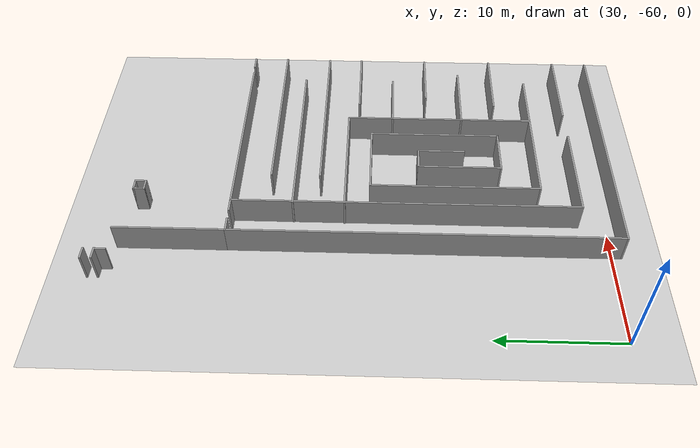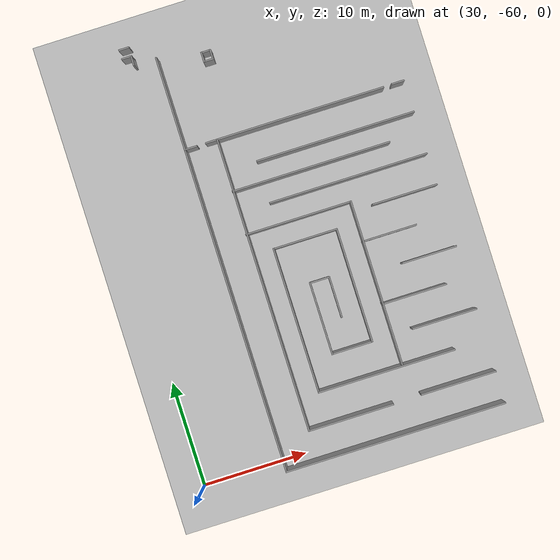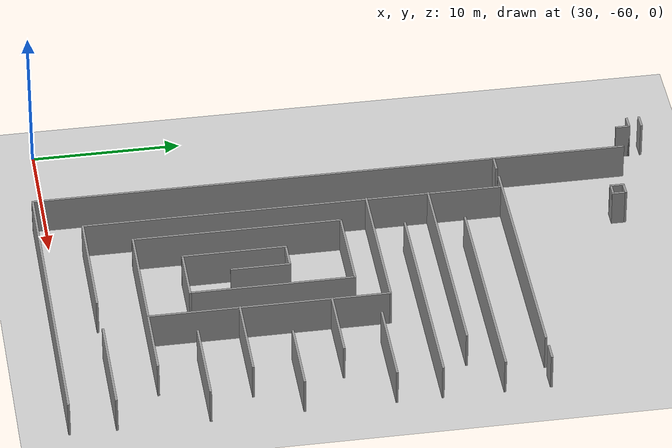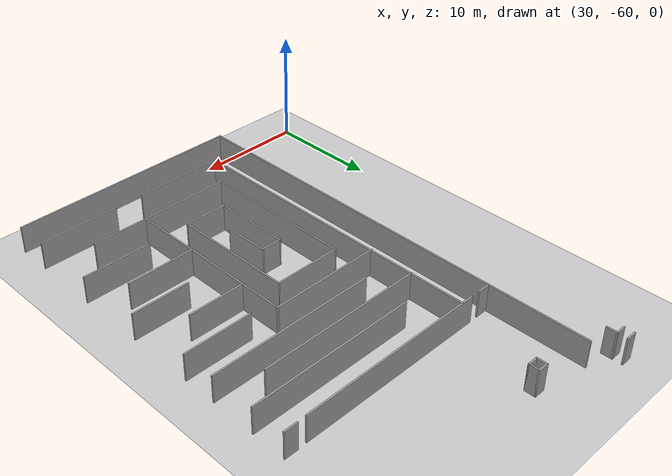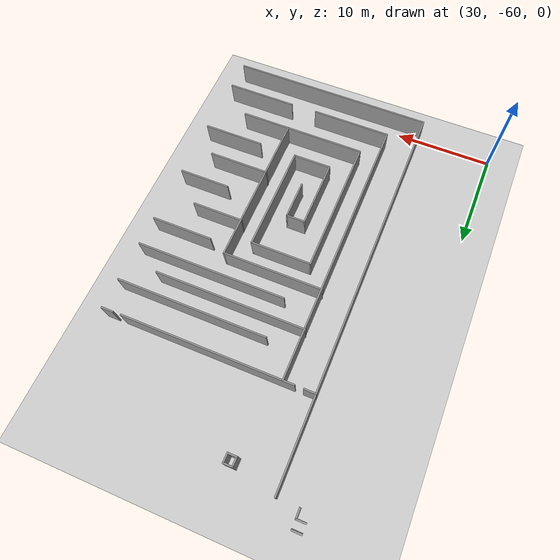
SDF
<sdf version="1.6">
 <world name="default">
  <model name="ground_plane">
   <static>1</static>
   <link name="link">
    <collision name="collision">
     <geometry><plane><normal>0 0 1</normal><size>300 300</size></plane></geometry>
     <surface>
      <contact><collide_bitmask>65535</collide_bitmask></contact>
      <friction><ode><mu>100</mu><mu2>50</mu2></ode></friction>
     </surface>
    </collision>
    <visual name="visual">
     <cast_shadows>0</cast_shadows>
     <geometry><plane><normal>0 0 1</normal><size>300 300</size></plane></geometry>
     <material>
      <script><uri>file://media/materials/scripts/gazebo.material</uri><name>Gazebo/Grey</name></script>
     </material>
    </visual>
   </link>
  </model>
  <model name="NIK">
   <pose>-0.005548 -3.7937 0 0 -0 0</pose>
   <link name="Wall_126">
    <collision name="Wall_126_Collision">
     <geometry><box><size>9 0.15 2.5</size></box></geometry>
     <pose>0 0 1.25 0 -0 0</pose>
    </collision>
    <visual name="Wall_126_Visual">
     <pose>0 0 1.25 0 -0 0</pose>
     <geometry><box><size>9 0.15 2.5</size></box></geometry>
     <material>
      <script><uri>file://media/materials/scripts/gazebo.material</uri><name>Gazebo/Grey</name></script>
      <ambient>1 1 1 1</ambient>
     </material>
     <meta><layer>0</layer></meta>
    </visual>
    <pose>37.8813 -21.4538 0 0 -0 -1.5708</pose>
   </link>
   <link name="Wall_152">
    <collision name="Wall_152_Collision">
     <geometry><box><size>28.25 0.15 2.5</size></box></geometry>
     <pose>0 0 1.25 0 -0 0</pose>
    </collision>
    <visual name="Wall_152_Visual">
     <pose>0 0 1.25 0 -0 0</pose>
     <geometry><box><size>28.25 0.15 2.5</size></box></geometry>
     <material>
      <script><uri>file://media/materials/scripts/gazebo.material</uri><name>Gazebo/Grey</name></script>
      <ambient>1 1 1 1</ambient>
     </material>
     <meta><layer>0</layer></meta>
    </visual>
    <pose>40.9954 -39.9466 0 0 -0 -1.5708</pose>
   </link>
   <link name="Wall_153">
    <collision name="Wall_153_Collision">
     <geometry><box><size>8.25 0.15 2.5</size></box></geometry>
     <pose>0 0 1.25 0 -0 0</pose>
    </collision>
    <visual name="Wall_153_Visual">
     <pose>0 0 1.25 0 -0 0</pose>
     <geometry><box><size>8.25 0.15 2.5</size></box></geometry>
     <material>
      <script><uri>file://media/materials/scripts/gazebo.material</uri><name>Gazebo/Grey</name></script>
      <ambient>1 1 1 1</ambient>
     </material>
     <meta><layer>0</layer></meta>
    </visual>
    <pose>45.0454 -53.9966 0 0 -0 0</pose>
   </link>
   <link name="Wall_155">
    <collision name="Wall_155_Collision">
     <geometry><box><size>7.25 0.15 2.5</size></box></geometry>
     <pose>0 0 1.25 0 -0 0</pose>
    </collision>
    <visual name="Wall_155_Visual">
     <pose>0 0 1.25 0 -0 0</pose>
     <geometry><box><size>7.25 0.15 2.5</size></box></geometry>
     <material>
      <script><uri>file://media/materials/scripts/gazebo.material</uri><name>Gazebo/Grey</name></script>
      <ambient>1 1 1 1</ambient>
     </material>
     <meta><layer>0</layer></meta>
    </visual>
    <pose>55.4543 -53.929 0 0 -0 3.14159</pose>
   </link>
   <link name="Wall_157">
    <collision name="Wall_157_Collision">
     <geometry><box><size>13.25 0.15 2.5</size></box></geometry>
     <pose>0 0 1.25 0 -0 0</pose>
    </collision>
    <visual name="Wall_157_Visual">
     <pose>0 0 1.25 0 -0 0</pose>
     <geometry><box><size>13.25 0.15 2.5</size></box></geometry>
     <material>
      <script><uri>file://media/materials/scripts/gazebo.material</uri><name>Gazebo/Grey</name></script>
      <ambient>1 1 1 1</ambient>
     </material>
     <meta><layer>0</layer></meta>
    </visual>
    <pose>49.4686 -50.8959 0 0 -0 3.14159</pose>
   </link>
   <link name="Wall_158">
    <collision name="Wall_158_Collision">
     <geometry><box><size>14 0.15 2.5</size></box></geometry>
     <pose>0 0 1.25 0 -0 0</pose>
    </collision>
    <visual name="Wall_158_Visual">
     <pose>0 0 1.25 0 -0 0</pose>
     <geometry><box><size>14 0.15 2.5</size></box></geometry>
     <material>
      <script><uri>file://media/materials/scripts/gazebo.material</uri><name>Gazebo/Grey</name></script>
      <ambient>1 1 1 1</ambient>
     </material>
     <meta><layer>0</layer></meta>
    </visual>
    <pose>42.9186 -43.9709 0 0 -0 1.5708</pose>
   </link>
   <link name="Wall_159">
    <collision name="Wall_159_Collision">
     <geometry><box><size>6.25 0.15 2.5</size></box></geometry>
     <pose>0 0 1.25 0 -0 0</pose>
    </collision>
    <visual name="Wall_159_Visual">
     <pose>0 0 1.25 0 -0 0</pose>
     <geometry><box><size>6.25 0.15 2.5</size></box></geometry>
     <material>
      <script><uri>file://media/materials/scripts/gazebo.material</uri><name>Gazebo/Grey</name></script>
      <ambient>1 1 1 1</ambient>
     </material>
     <meta><layer>0</layer></meta>
    </visual>
    <pose>45.9686 -37.0459 0 0 -0 0</pose>
   </link>
   <link name="Wall_160">
    <collision name="Wall_160_Collision">
     <geometry><box><size>11 0.15 2.5</size></box></geometry>
     <pose>0 0 1.25 0 -0 0</pose>
    </collision>
    <visual name="Wall_160_Visual">
     <pose>0 0 1.25 0 -0 0</pose>
     <geometry><box><size>11 0.15 2.5</size></box></geometry>
     <material>
      <script><uri>file://media/materials/scripts/gazebo.material</uri><name>Gazebo/Grey</name></script>
      <ambient>1 1 1 1</ambient>
     </material>
     <meta><layer>0</layer></meta>
    </visual>
    <pose>49.0186 -42.4709 0 0 -0 -1.5708</pose>
   </link>
   <link name="Wall_161">
    <collision name="Wall_161_Collision">
     <geometry><box><size>4 0.15 2.5</size></box></geometry>
     <pose>0 0 1.25 0 -0 0</pose>
    </collision>
    <visual name="Wall_161_Visual">
     <pose>0 0 1.25 0 -0 0</pose>
     <geometry><box><size>4 0.15 2.5</size></box></geometry>
     <material>
      <script><uri>file://media/materials/scripts/gazebo.material</uri><name>Gazebo/Grey</name></script>
      <ambient>1 1 1 1</ambient>
     </material>
     <meta><layer>0</layer></meta>
    </visual>
    <pose>47.0936 -47.8959 0 0 -0 3.14159</pose>
   </link>
   <link name="Wall_162">
    <collision name="Wall_162_Collision">
     <geometry><box><size>7 0.15 2.5</size></box></geometry>
     <pose>0 0 1.25 0 -0 0</pose>
    </collision>
    <visual name="Wall_162_Visual">
     <pose>0 0 1.25 0 -0 0</pose>
     <geometry><box><size>7 0.15 2.5</size></box></geometry>
     <material>
      <script><uri>file://media/materials/scripts/gazebo.material</uri><name>Gazebo/Grey</name></script>
      <ambient>1 1 1 1</ambient>
     </material>
     <meta><layer>0</layer></meta>
    </visual>
    <pose>45.1686 -44.4709 0 0 -0 1.5708</pose>
   </link>
   <link name="Wall_163">
    <collision name="Wall_163_Collision">
     <geometry><box><size>2 0.15 2.5</size></box></geometry>
     <pose>0 0 1.25 0 -0 0</pose>
    </collision>
    <visual name="Wall_163_Visual">
     <pose>0 0 1.25 0 -0 0</pose>
     <geometry><box><size>2 0.15 2.5</size></box></geometry>
     <material>
      <script><uri>file://media/materials/scripts/gazebo.material</uri><name>Gazebo/Grey</name></script>
      <ambient>1 1 1 1</ambient>
     </material>
     <meta><layer>0</layer></meta>
    </visual>
    <pose>46.0936 -41.0459 0 0 -0 0</pose>
   </link>
   <link name="Wall_164">
    <collision name="Wall_164_Collision">
     <geometry><box><size>4 0.15 2.5</size></box></geometry>
     <pose>0 0 1.25 0 -0 0</pose>
    </collision>
    <visual name="Wall_164_Visual">
     <pose>0 0 1.25 0 -0 0</pose>
     <geometry><box><size>4 0.15 2.5</size></box></geometry>
     <material>
      <script><uri>file://media/materials/scripts/gazebo.material</uri><name>Gazebo/Grey</name></script>
      <ambient>1 1 1 1</ambient>
     </material>
     <meta><layer>0</layer></meta>
    </visual>
    <pose>47.0186 -42.9709 0 0 -0 -1.5708</pose>
   </link>
   <link name="Wall_166">
    <collision name="Wall_166_Collision">
     <geometry><box><size>16 0.15 2.5</size></box></geometry>
     <pose>0 0 1.25 0 -0 0</pose>
    </collision>
    <visual name="Wall_166_Visual">
     <pose>0 0 1.25 0 -0 0</pose>
     <geometry><box><size>16 0.15 2.5</size></box></geometry>
     <material>
      <script><uri>file://media/materials/scripts/gazebo.material</uri><name>Gazebo/Grey</name></script>
      <ambient>1 1 1 1</ambient>
     </material>
     <meta><layer>0</layer></meta>
    </visual>
    <pose>51.0188 -42.9472 0 0 -0 1.5708</pose>
   </link>
   <link name="Wall_167">
    <collision name="Wall_167_Collision">
     <geometry><box><size>10.25 0.15 2.5</size></box></geometry>
     <pose>0 0 1.25 0 -0 0</pose>
    </collision>
    <visual name="Wall_167_Visual">
     <pose>0 0 1.25 0 -0 0</pose>
     <geometry><box><size>10.25 0.15 2.5</size></box></geometry>
     <material>
      <script><uri>file://media/materials/scripts/gazebo.material</uri><name>Gazebo/Grey</name></script>
      <ambient>1 1 1 1</ambient>
     </material>
     <meta><layer>0</layer></meta>
    </visual>
    <pose>45.9688 -35.0222 0 0 -0 3.14159</pose>
   </link>
   <link name="Wall_169">
    <collision name="Wall_169_Collision">
     <geometry><box><size>6.25 0.15 2.5</size></box></geometry>
     <pose>0 0 1.25 0 -0 0</pose>
    </collision>
    <visual name="Wall_169_Visual">
     <pose>0 0 1.25 0 -0 0</pose>
     <geometry><box><size>6.25 0.15 2.5</size></box></geometry>
     <material>
      <script><uri>file://media/materials/scripts/gazebo.material</uri><name>Gazebo/Grey</name></script>
      <ambient>1 1 1 1</ambient>
     </material>
     <meta><layer>0</layer></meta>
    </visual>
    <pose>56.0119 -47.9102 0 0 -0 0</pose>
   </link>
   <link name="Wall_171">
    <collision name="Wall_171_Collision">
     <geometry><box><size>6.25 0.15 2.5</size></box></geometry>
     <pose>0 0 1.25 0 -0 0</pose>
    </collision>
    <visual name="Wall_171_Visual">
     <pose>0 0 1.25 0 -0 0</pose>
     <geometry><box><size>6.25 0.15 2.5</size></box></geometry>
     <material>
      <script><uri>file://media/materials/scripts/gazebo.material</uri><name>Gazebo/Grey</name></script>
      <ambient>1 1 1 1</ambient>
     </material>
     <meta><layer>0</layer></meta>
    </visual>
    <pose>54.035 -44.9008 0 0 -0 3.14159</pose>
   </link>
   <link name="Wall_173">
    <collision name="Wall_173_Collision">
     <geometry><box><size>5.25 0.15 2.5</size></box></geometry>
     <pose>0 0 1.25 0 -0 0</pose>
    </collision>
    <visual name="Wall_173_Visual">
     <pose>0 0 1.25 0 -0 0</pose>
     <geometry><box><size>5.25 0.15 2.5</size></box></geometry>
     <material>
      <script><uri>file://media/materials/scripts/gazebo.material</uri><name>Gazebo/Grey</name></script>
      <ambient>1 1 1 1</ambient>
     </material>
     <meta><layer>0</layer></meta>
    </visual>
    <pose>56.4497 -41.8577 0 0 -0 3.14159</pose>
   </link>
   <link name="Wall_175">
    <collision name="Wall_175_Collision">
     <geometry><box><size>5.25 0.15 2.5</size></box></geometry>
     <pose>0 0 1.25 0 -0 0</pose>
    </collision>
    <visual name="Wall_175_Visual">
     <pose>0 0 1.25 0 -0 0</pose>
     <geometry><box><size>5.25 0.15 2.5</size></box></geometry>
     <material>
      <script><uri>file://media/materials/scripts/gazebo.material</uri><name>Gazebo/Grey</name></script>
      <ambient>1 1 1 1</ambient>
     </material>
     <meta><layer>0</layer></meta>
    </visual>
    <pose>53.5405 -38.8655 0 0 -0 0</pose>
   </link>
   <link name="Wall_177">
    <collision name="Wall_177_Collision">
     <geometry><box><size>6.25 0.15 2.5</size></box></geometry>
     <pose>0 0 1.25 0 -0 0</pose>
    </collision>
    <visual name="Wall_177_Visual">
     <pose>0 0 1.25 0 -0 0</pose>
     <geometry><box><size>6.25 0.15 2.5</size></box></geometry>
     <material>
      <script><uri>file://media/materials/scripts/gazebo.material</uri><name>Gazebo/Grey</name></script>
      <ambient>1 1 1 1</ambient>
     </material>
     <meta><layer>0</layer></meta>
    </visual>
    <pose>55.9676 -35.8912 0 0 -0 3.14159</pose>
   </link>
   <link name="Wall_179">
    <collision name="Wall_179_Collision">
     <geometry><box><size>15.25 0.15 2.5</size></box></geometry>
     <pose>0 0 1.25 0 -0 0</pose>
    </collision>
    <visual name="Wall_179_Visual">
     <pose>0 0 1.25 0 -0 0</pose>
     <geometry><box><size>15.25 0.15 2.5</size></box></geometry>
     <material>
      <script><uri>file://media/materials/scripts/gazebo.material</uri><name>Gazebo/Grey</name></script>
      <ambient>1 1 1 1</ambient>
     </material>
     <meta><layer>0</layer></meta>
    </visual>
    <pose>51.4497 -32.8989 0 0 -0 3.14159</pose>
   </link>
   <link name="Wall_181">
    <collision name="Wall_181_Collision">
     <geometry><box><size>15.25 0.15 2.5</size></box></geometry>
     <pose>0 0 1.25 0 -0 0</pose>
    </collision>
    <visual name="Wall_181_Visual">
     <pose>0 0 1.25 0 -0 0</pose>
     <geometry><box><size>15.25 0.15 2.5</size></box></geometry>
     <material>
      <script><uri>file://media/materials/scripts/gazebo.material</uri><name>Gazebo/Grey</name></script>
      <ambient>1 1 1 1</ambient>
     </material>
     <meta><layer>0</layer></meta>
    </visual>
    <pose>48.4887 -30.8563 0 0 -0 0</pose>
   </link>
   <link name="Wall_183">
    <collision name="Wall_183_Collision">
     <geometry><box><size>15.25 0.15 2.5</size></box></geometry>
     <pose>0 0 1.25 0 -0 0</pose>
    </collision>
    <visual name="Wall_183_Visual">
     <pose>0 0 1.25 0 -0 0</pose>
     <geometry><box><size>15.25 0.15 2.5</size></box></geometry>
     <material>
      <script><uri>file://media/materials/scripts/gazebo.material</uri><name>Gazebo/Grey</name></script>
      <ambient>1 1 1 1</ambient>
     </material>
     <meta><layer>0</layer></meta>
    </visual>
    <pose>51.4676 -28.8675 0 0 -0 3.14159</pose>
   </link>
   <link name="Wall_19">
    <collision name="Wall_19_Collision">
     <geometry><box><size>21.25 0.15 2.5</size></box></geometry>
     <pose>0 0 1.25 0 -0 0</pose>
    </collision>
    <visual name="Wall_19_Visual">
     <pose>0 0 1.25 0 -0 0</pose>
     <geometry><box><size>21.25 0.15 2.5</size></box></geometry>
     <material>
      <script><uri>file://media/materials/scripts/gazebo.material</uri><name>Gazebo/Grey</name></script>
      <ambient>1 1 1 1</ambient>
     </material>
     <meta><layer>0</layer></meta>
    </visual>
    <pose>48.4313 -56.9788 0 0 -0 3.14159</pose>
   </link>
   <link name="Wall_20">
    <collision name="Wall_20_Collision">
     <geometry><box><size>31.25 0.15 2.5</size></box></geometry>
     <pose>0 0 1.25 0 -0 0</pose>
    </collision>
    <visual name="Wall_20_Visual">
     <pose>0 0 1.25 0 -0 0</pose>
     <geometry><box><size>31.25 0.15 2.5</size></box></geometry>
     <material>
      <script><uri>file://media/materials/scripts/gazebo.material</uri><name>Gazebo/Grey</name></script>
      <ambient>1 1 1 1</ambient>
     </material>
     <meta><layer>0</layer></meta>
    </visual>
    <pose>37.8813 -41.4288 0 0 -0 1.5708</pose>
   </link>
   <link name="Wall_309">
    <collision name="Wall_309_Collision">
     <geometry><box><size>1 0.15 2.5</size></box></geometry>
     <pose>0 0 1.25 0 -0 0</pose>
    </collision>
    <visual name="Wall_309_Visual">
     <pose>0 0 1.25 0 -0 0</pose>
     <geometry><box><size>1 0.15 2.5</size></box></geometry>
     <material>
      <script><uri>file://media/materials/scripts/gazebo.material</uri><name>Gazebo/Grey</name></script>
      <ambient>1 1 1 1</ambient>
     </material>
     <meta><layer>0</layer></meta>
    </visual>
    <pose>35.7405 -16.6025 0 0 -0 1.5708</pose>
   </link>
   <link name="Wall_333">
    <collision name="Wall_333_Collision">
     <geometry><box><size>1 0.15 2.5</size></box></geometry>
     <pose>0 0 1.25 0 -0 0</pose>
    </collision>
    <visual name="Wall_333_Visual">
     <pose>0 0 1.25 0 -0 0</pose>
     <geometry><box><size>1 0.15 2.5</size></box></geometry>
     <material>
      <script><uri>file://media/materials/scripts/gazebo.material</uri><name>Gazebo/Grey</name></script>
      <ambient>1 1 1 1</ambient>
     </material>
     <meta><layer>0</layer></meta>
    </visual>
    <pose>35.3155 -15.3275 0 0 -0 0</pose>
   </link>
   <link name="Wall_335">
    <collision name="Wall_335_Collision">
     <geometry><box><size>1 0.15 2.5</size></box></geometry>
     <pose>0 0 1.25 0 -0 0</pose>
    </collision>
    <visual name="Wall_335_Visual">
     <pose>0 0 1.25 0 -0 0</pose>
     <geometry><box><size>1 0.15 2.5</size></box></geometry>
     <material>
      <script><uri>file://media/materials/scripts/gazebo.material</uri><name>Gazebo/Grey</name></script>
      <ambient>1 1 1 1</ambient>
     </material>
     <meta><layer>0</layer></meta>
    </visual>
    <pose>35.3155 -16.1775 0 0 -0 3.14159</pose>
   </link>
   <link name="Wall_525">
    <collision name="Wall_525_Collision">
     <geometry><box><size>1 0.15 2.5</size></box></geometry>
     <pose>0 0 1.25 0 -0 0</pose>
    </collision>
    <visual name="Wall_525_Visual">
     <pose>0 0 1.25 0 -0 0</pose>
     <geometry><box><size>1 0.15 2.5</size></box></geometry>
     <material>
      <script><uri>file://media/materials/scripts/gazebo.material</uri><name>Gazebo/Grey</name></script>
      <ambient>1 1 1 1</ambient>
     </material>
     <meta><layer>0</layer></meta>
    </visual>
    <pose>42.0131 -18.2414 0 0 -0 -1.5708</pose>
   </link>
   <link name="Wall_526">
    <collision name="Wall_526_Collision">
     <geometry><box><size>1 0.15 2.5</size></box></geometry>
     <pose>0 0 1.25 0 -0 0</pose>
    </collision>
    <visual name="Wall_526_Visual">
     <pose>0 0 1.25 0 -0 0</pose>
     <geometry><box><size>1 0.15 2.5</size></box></geometry>
     <material>
      <script><uri>file://media/materials/scripts/gazebo.material</uri><name>Gazebo/Grey</name></script>
      <ambient>1 1 1 1</ambient>
     </material>
     <meta><layer>0</layer></meta>
    </visual>
    <pose>42.4381 -18.6664 0 0 -0 0</pose>
   </link>
   <link name="Wall_527">
    <collision name="Wall_527_Collision">
     <geometry><box><size>1 0.15 2.5</size></box></geometry>
     <pose>0 0 1.25 0 -0 0</pose>
    </collision>
    <visual name="Wall_527_Visual">
     <pose>0 0 1.25 0 -0 0</pose>
     <geometry><box><size>1 0.15 2.5</size></box></geometry>
     <material>
      <script><uri>file://media/materials/scripts/gazebo.material</uri><name>Gazebo/Grey</name></script>
      <ambient>1 1 1 1</ambient>
     </material>
     <meta><layer>0</layer></meta>
    </visual>
    <pose>42.8631 -18.2414 0 0 -0 1.5708</pose>
   </link>
   <link name="Wall_528">
    <collision name="Wall_528_Collision">
     <geometry><box><size>1 0.15 2.5</size></box></geometry>
     <pose>0 0 1.25 0 -0 0</pose>
    </collision>
    <visual name="Wall_528_Visual">
     <pose>0 0 1.25 0 -0 0</pose>
     <geometry><box><size>1 0.15 2.5</size></box></geometry>
     <material>
      <script><uri>file://media/materials/scripts/gazebo.material</uri><name>Gazebo/Grey</name></script>
      <ambient>1 1 1 1</ambient>
     </material>
     <meta><layer>0</layer></meta>
    </visual>
    <pose>42.4381 -17.8164 0 0 -0 3.14159</pose>
   </link>
   <link name="Wall_535">
    <collision name="Wall_535_Collision">
     <geometry><box><size>1.25 0.15 2.5</size></box></geometry>
     <pose>0 0 1.25 0 -0 0</pose>
    </collision>
    <visual name="Wall_535_Visual">
     <pose>0 0 1.25 0 -0 0</pose>
     <geometry><box><size>1.25 0.15 2.5</size></box></geometry>
     <material>
      <script><uri>file://media/materials/scripts/gazebo.material</uri><name>Gazebo/Grey</name></script>
      <ambient>1 1 1 1</ambient>
     </material>
     <meta><layer>0</layer></meta>
    </visual>
    <pose>38.4313 -25.8788 0 0 -0 0</pose>
   </link>
   <link name="Wall_537">
    <collision name="Wall_537_Collision">
     <geometry><box><size>17.25 0.15 2.5</size></box></geometry>
     <pose>0 0 1.25 0 -0 0</pose>
    </collision>
    <visual name="Wall_537_Visual">
     <pose>0 0 1.25 0 -0 0</pose>
     <geometry><box><size>17.25 0.15 2.5</size></box></geometry>
     <material>
      <script><uri>file://media/materials/scripts/gazebo.material</uri><name>Gazebo/Grey</name></script>
      <ambient>1 1 1 1</ambient>
     </material>
     <meta><layer>0</layer></meta>
    </visual>
    <pose>48.4662 -25.8753 0 0 -0 0</pose>
   </link>
   <link name="Wall_539">
    <collision name="Wall_539_Collision">
     <geometry><box><size>1.25 0.15 2.5</size></box></geometry>
     <pose>0 0 1.25 0 -0 0</pose>
    </collision>
    <visual name="Wall_539_Visual">
     <pose>0 0 1.25 0 -0 0</pose>
     <geometry><box><size>1.25 0.15 2.5</size></box></geometry>
     <material>
      <script><uri>file://media/materials/scripts/gazebo.material</uri><name>Gazebo/Grey</name></script>
      <ambient>1 1 1 1</ambient>
     </material>
     <meta><layer>0</layer></meta>
    </visual>
    <pose>58.4537 -25.8459 0 0 -0 3.14159</pose>
   </link>
   <static>1</static>
  </model>
 </world>
</sdf>
